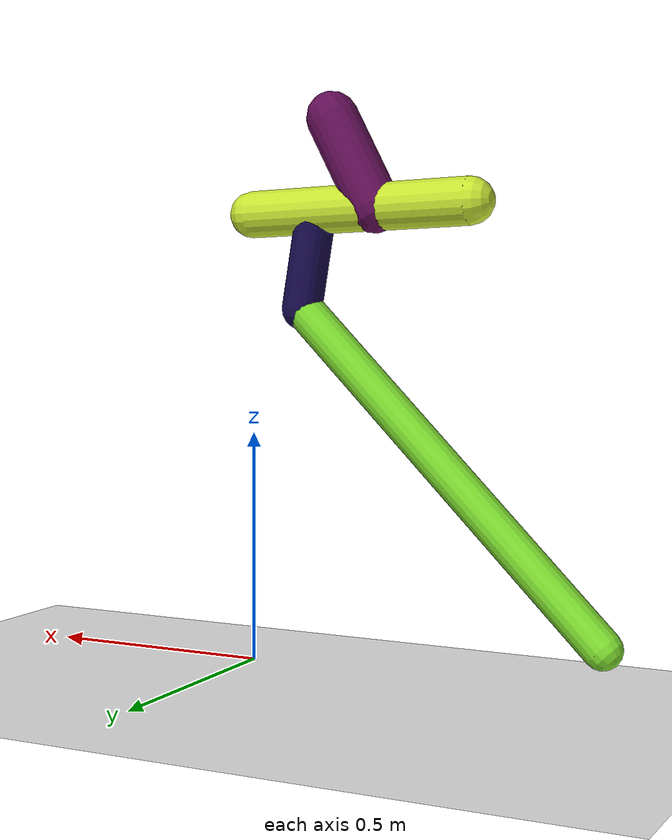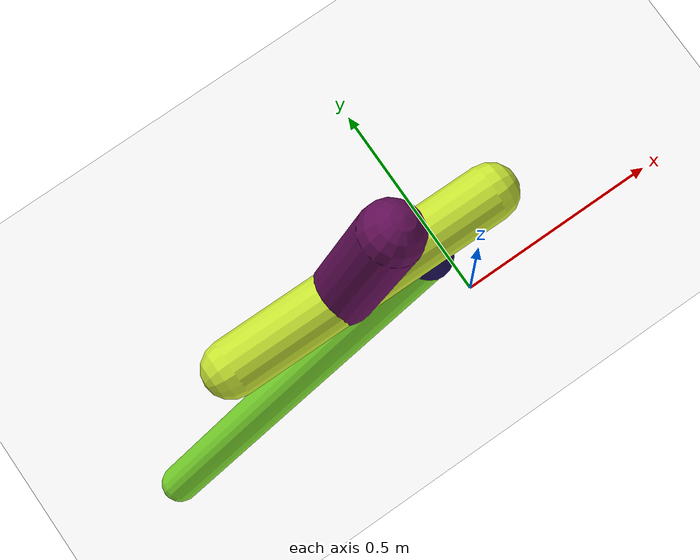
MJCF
<mujoco model="morphology">
  <option timestep="0.01"/>
  <default>
    <default class="/"/>
    <default class="0/"/>
    <default class="0/1/"/>
    <default class="0/1/2/"/>
    <default class="0/3/"/>
  </default>
  <asset>
    <texture name="texplane" type="2d" builtin="checker" rgb1="0.10000000000000001 0.20000000000000001 0.29999999999999999" rgb2="0.20000000000000001 0.29999999999999999 0.40000000000000002" width="300" height="300"/>
    <material name="MatPlane" class="/" texture="texplane" texrepeat="20 20" specular="1" shininess="1" reflectance="0.5"/>
  </asset>
  <worldbody>
    <light name="//unnamed_light_0" class="/" directional="true" pos="0 0 1.5" dir="0 0 -1.3" cutoff="100" exponent="1" diffuse="1 1 1" specular="0.10000000000000001 0.10000000000000001 0.10000000000000001"/>
    <geom name="ground" class="/" type="plane" size="15 15 0.5" material="MatPlane" rgba="1 1 1 1"/>
    <site name="body" class="/" size="9.9999999999999995e-07 9.9999999999999995e-07 9.9999999999999995e-07" pos="0 0 0.97385952472686765"/>
    <body pos="0 0 0.97385952472686765" name="0/">
      <joint name="0/rootx/" class="/" type="slide" axis="1 0 0" limited="false" stiffness="0" armature="0" damping="0"/>
      <joint name="0/rootz/" class="/" type="slide" axis="0 0 1" limited="false" stiffness="0" armature="0" damping="0"/>
      <joint name="0/rooty/" class="/" type="hinge" axis="0 1 0" limited="false" stiffness="0" armature="0" damping="0"/>
      <geom name="0/geom" class="0/" type="capsule" contype="1" conaffinity="1" condim="3" size="0.050304120176999548" rgba="0.78162832028503459 0.89447779493640389 0.1974763445815404 1" friction="0.59999999999999998 0.10000000000000001 0.10000000000000001" fromto="0 0 0 -0.50236084590708696 0 0.016910550043270245"/>
      <site name="0/end0" class="0/" size="0.0050000000000000001" pos="-0.50236084590708696 0 0.016910550043270245"/>
      <site name="0/attach1" class="0/" size="9.9999999999999995e-07 9.9999999999999995e-07 9.9999999999999995e-07" pos="-0.15274170302276913 0 0.0051416153024365727"/>
      <body pos="-0.15274170302276913 0 0.0051416153024365727" name="0/1/">
        <joint name="0/1/joint/" class="0/" type="hinge" axis="0 1 0" limited="true" range="-63.870839973039686 63.870839973039686"/>
        <geom name="0/1/geom" class="0/1/" type="capsule" contype="1" conaffinity="1" condim="3" size="0.04345025682362489" rgba="0.085909712268596117 0.03907199741848999 0.294476751171597 1" friction="0.59999999999999998 0.10000000000000001 0.10000000000000001" fromto="0 0 0 0.034579730912952411 0 -0.20956205762177449"/>
        <site name="0/1/end1" class="0/1/" size="0.0050000000000000001" pos="0.034579730912952411 0 -0.20956205762177449"/>
        <site name="0/1/attach2" class="0/1/" size="9.9999999999999995e-07 9.9999999999999995e-07 9.9999999999999995e-07" pos="0.033907294782041908 0 -0.2054869218271218"/>
        <body pos="0.033907294782041908 0 -0.2054869218271218" name="0/1/2/">
          <joint name="0/1/2/joint/" class="0/1/" type="hinge" axis="0 1 0" limited="true" range="-35.356226081399853 35.356226081399853"/>
          <geom name="0/1/2/geom" class="0/1/2/" type="capsule" contype="1" conaffinity="1" condim="3" size="0.041579918052347925" rgba="0.49004141220505515 0.8624338637183282 0.18235914913353757 1" friction="0.59999999999999998 0.10000000000000001 0.10000000000000001" fromto="0 0 0 -0.6675375652675406 0 -0.67351421247350762"/>
          <site name="0/1/2/end2" class="0/1/2/" size="0.0050000000000000001" pos="-0.6675375652675406 0 -0.67351421247350762"/>
        </body>
      </body>
      <site name="0/attach3" class="0/" size="9.9999999999999995e-07 9.9999999999999995e-07 9.9999999999999995e-07" pos="-0.28928422536785925 0 0.0097379312294506182"/>
      <body pos="-0.28928422536785925 0 0.0097379312294506182" name="0/3/">
        <joint name="0/3/joint/" class="0/" type="hinge" axis="0 1 0" limited="true" range="-68.75754717062155 68.75754717062155"/>
        <geom name="0/3/geom" class="0/3/" type="capsule" contype="1" conaffinity="1" condim="3" size="0.055402475014745649" rgba="0.38475318889858412 0.056858691627285962 0.34064582668821142 1" friction="0.59999999999999998 0.10000000000000001 0.10000000000000001" fromto="0 0 0 0.099294017185558192 0 0.1895852968322731"/>
        <site name="0/3/end3" class="0/3/" size="0.0050000000000000001" pos="0.099294017185558192 0 0.1895852968322731"/>
      </body>
      <camera name="0/side" class="0/" mode="trackcom" pos="0.40000000000000002 -4 0.20000000000000001" quat="0.70699999999999996 0.70699999999999996 0 0"/>
    </body>
  </worldbody>
  <actuator>
    <motor name="0/1/motor" class="0/1/" ctrllimited="true" ctrlrange="-1 1" gear="85" joint="0/1/joint/"/>
    <motor name="0/1/2/motor" class="0/1/2/" ctrllimited="true" ctrlrange="-1 1" gear="75" joint="0/1/2/joint/"/>
    <motor name="0/3/motor" class="0/3/" ctrllimited="true" ctrlrange="-1 1" gear="55" joint="0/3/joint/"/>
  </actuator>
  <sensor>
    <subtreelinvel name="velocity" body="0/"/>
  </sensor>
</mujoco>
